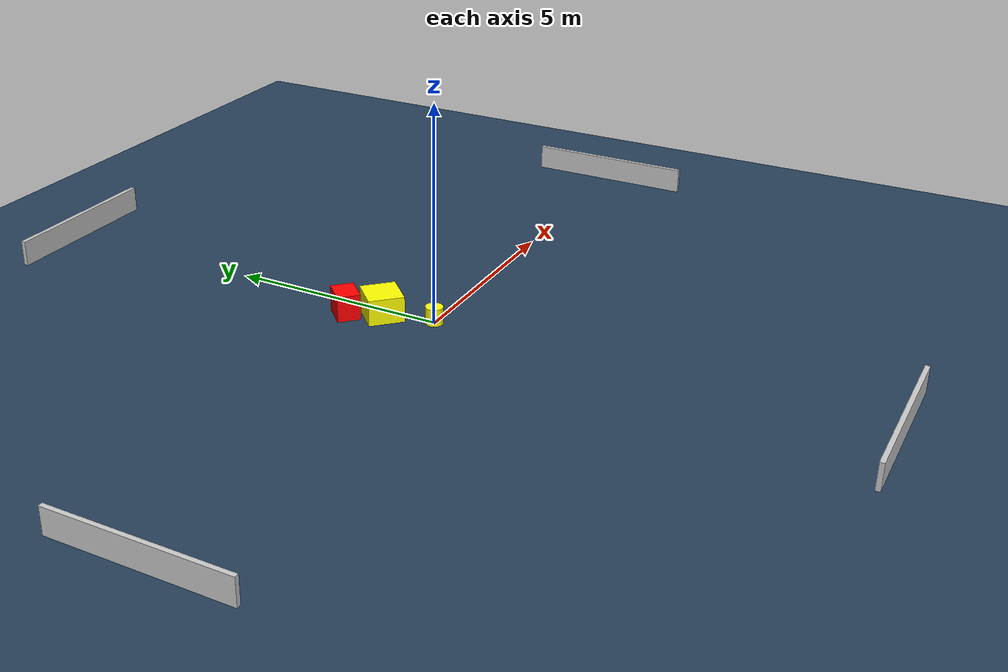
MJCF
<?xml version="1.0" ?>
<mujoco model="generated_environment">
  <option timestep="0.01" integrator="RK4" cone="elliptic"/>
  <default>
    <geom density="1"/>
  </default>
  <asset>
    <texture builtin="gradient" height="3072" name="skybox" rgb1="0.3 0.5 0.7" rgb2="0 0 0" type="skybox" width="512"/>
    <texture builtin="checker" height="300" name="groundplane" rgb1="0.2 0.3 0.4" rgb2="0.1 0.2 0.3" type="2d" width="300"/>
    <material name="groundplane" reflectance="0.2" texrepeat="5 5" texture="groundplane"/>
  </asset>
  <worldbody>
    <light dir="0 0 -1" directional="true" pos="0 0 1.5"/>
    <geom condim="3" friction="0.5 0.005 0.001" material="groundplane" name="floor" pos="0 0 0" size="0 0 0.05" type="plane"/>
    <body name="walls">
      <geom name="wall_1" condim="4" pos="-10.0 0.0 0.3" rgba="0.800000011920929 0.800000011920929 0.800000011920929 1.0" size="0.05 2.0 0.3" type="box"/>
      <geom name="wall_2" condim="4" pos="10.0 0.0 0.3" rgba="0.800000011920929 0.800000011920929 0.800000011920929 1.0" size="0.05 2.0 0.3" type="box"/>
      <geom name="wall_3" condim="4" pos="0.0 -10.0 0.3" rgba="0.800000011920929 0.800000011920929 0.800000011920929 1.0" size="2.0 0.05 0.3" type="box"/>
      <geom name="wall_4" condim="4" pos="0.0 10.0 0.3" rgba="0.800000011920929 0.800000011920929 0.800000011920929 1.0" size="2.0 0.05 0.3" type="box"/>
    </body>
    <body name="robot">
      <joint name="joint_x" type="slide" pos="0 0 0" axis="1 0 0"/>
      <joint name="joint_y" type="slide" pos="0 0 0" axis="0 1 0"/>
      <geom name="robot" type="cylinder" pos="0.0 0.0 0.2" size="0.2 0.2 0.0" mass="5.0" friction="1.0 0.005 0.0001" condim="4" rgba="1.0 1.0 0.0 1.0"/>
    </body>
    <body name="obstacle_1_movable">
      <geom name="obstacle_1_movable" condim="4" pos="-0.25773808072521864 1.1688321603372287 0.3" euler="0 0 224.7107559741647" friction="0.0 0.005 0.001" rgba="1.0 1.0 0.0 1.0" size="0.4139009631707482 0.4067323134368703 0.3" type="box" mass="0.1"/>
      <joint type="free"/>
    </body>
    <body name="obstacle_2_static">
      <geom name="obstacle_2_static" condim="4" pos="-0.5830518420777194 1.9086815888439288 0.3" euler="0 0 45.45085068548952" friction="0.0 0.005 0.001" rgba="1.0 0.0 0.0 1.0" size="0.3296369251971837 0.26348607695815596 0.3" type="box"/>
    </body>
  </worldbody>
  <actuator>
    <motor name="actuator_x" joint="joint_x" gear="1" ctrlrange="-1 1"/>
    <motor name="actuator_y" joint="joint_y" gear="1" ctrlrange="-1 1"/>
  </actuator>
</mujoco>
